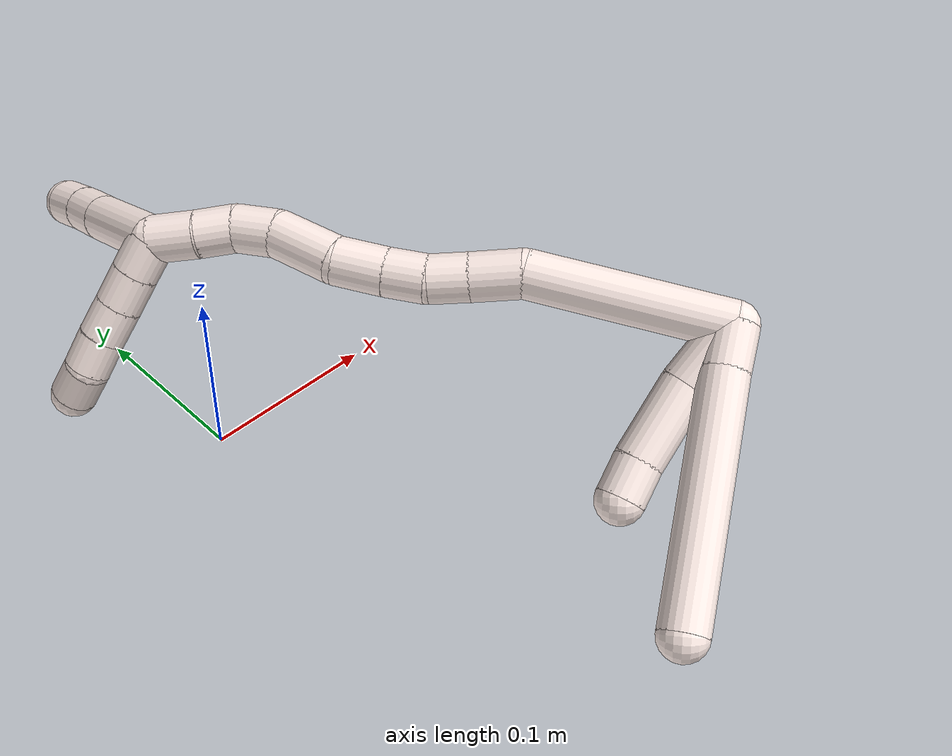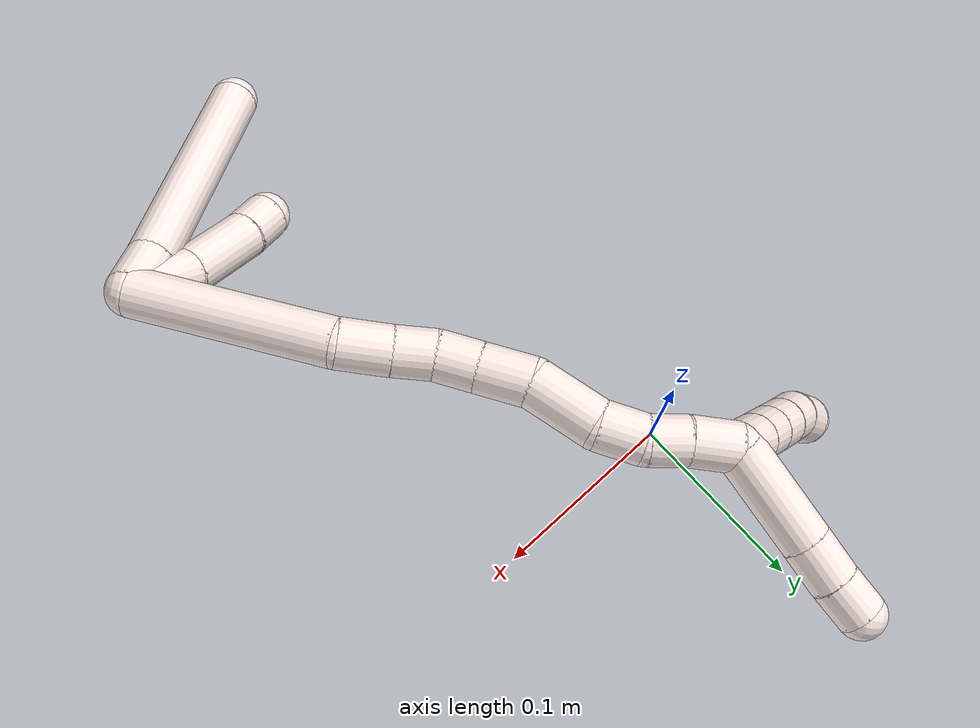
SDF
<sdf version="1.7">
 <world name="default">
  <model name="11">
   <static>0</static>
   <link name="11">
    <collision name="collision-cylinder-e_1_2_8">
     <pose>-0.010551 -0.005505 -0.001604 1.85427 -1.073 -1.34048</pose>
     <geometry><cylinder><radius>0.0125</radius><length>0.024018</length></cylinder></geometry>
     <surface>
      <friction><ode><mu>1.16</mu><mu2>1.16</mu2><slip1>0</slip1><slip2>0</slip2></ode></friction>
      <contact><ode><kp>1e+06</kp><kd>1</kd><max_vel>0</max_vel><min_depth>0.001</min_depth></ode></contact>
     </surface>
    </collision>
    <visual name="visual-cylinder-e_1_2_8">
     <pose>-0.010551 -0.005505 -0.001604 1.85427 -1.073 -1.34048</pose>
     <geometry><cylinder><radius>0.0125</radius><length>0.024018</length></cylinder></geometry>
     <material><ambient>1 0.933333 0.909804 1</ambient></material>
    </visual>
    <collision name="collision-cylinder-e_2_8_6">
     <pose>-0.077647 -0.038182 -0.008902 1.77738 -1.1144 -1.30879</pose>
     <geometry><cylinder><radius>0.0125</radius><length>0.125982</length></cylinder></geometry>
     <surface>
      <friction><ode><mu>1.16</mu><mu2>1.16</mu2><slip1>0</slip1><slip2>0</slip2></ode></friction>
      <contact><ode><kp>1e+06</kp><kd>1</kd><max_vel>0</max_vel><min_depth>0.001</min_depth></ode></contact>
     </surface>
    </collision>
    <visual name="visual-cylinder-e_2_8_6">
     <pose>-0.077647 -0.038182 -0.008902 1.77738 -1.1144 -1.30879</pose>
     <geometry><cylinder><radius>0.0125</radius><length>0.125982</length></cylinder></geometry>
     <material><ambient>1 0.933333 0.909804 1</ambient></material>
    </visual>
    <collision name="collision-cylinder-e_1_2_9">
     <pose>-0.010922 -0.010213 -0.010539 2.37192 -0.639784 -1.37111</pose>
     <geometry><cylinder><radius>0.0125</radius><length>0.036587</length></cylinder></geometry>
     <surface>
      <friction><ode><mu>1.16</mu><mu2>1.16</mu2><slip1>0</slip1><slip2>0</slip2></ode></friction>
      <contact><ode><kp>1e+06</kp><kd>1</kd><max_vel>0</max_vel><min_depth>0.001</min_depth></ode></contact>
     </surface>
    </collision>
    <visual name="visual-cylinder-e_1_2_9">
     <pose>-0.010922 -0.010213 -0.010539 2.37192 -0.639784 -1.37111</pose>
     <geometry><cylinder><radius>0.0125</radius><length>0.036587</length></cylinder></geometry>
     <material><ambient>1 0.933333 0.909804 1</ambient></material>
    </visual>
    <collision name="collision-cylinder-e_2_9_10">
     <pose>-0.037934 -0.030968 -0.0309 2.32081 -0.840475 -1.59746</pose>
     <geometry><cylinder><radius>0.0125</radius><length>0.043198</length></cylinder></geometry>
     <surface>
      <friction><ode><mu>1.16</mu><mu2>1.16</mu2><slip1>0</slip1><slip2>0</slip2></ode></friction>
      <contact><ode><kp>1e+06</kp><kd>1</kd><max_vel>0</max_vel><min_depth>0.001</min_depth></ode></contact>
     </surface>
    </collision>
    <visual name="visual-cylinder-e_2_9_10">
     <pose>-0.037934 -0.030968 -0.0309 2.32081 -0.840475 -1.59746</pose>
     <geometry><cylinder><radius>0.0125</radius><length>0.043198</length></cylinder></geometry>
     <material><ambient>1 0.933333 0.909804 1</ambient></material>
    </visual>
    <collision name="collision-cylinder-e_3_10_5">
     <pose>-0.06204 -0.046488 -0.044346 2.20021 -0.915773 -1.53882</pose>
     <geometry><cylinder><radius>0.0125</radius><length>0.020214</length></cylinder></geometry>
     <surface>
      <friction><ode><mu>1.16</mu><mu2>1.16</mu2><slip1>0</slip1><slip2>0</slip2></ode></friction>
      <contact><ode><kp>1e+06</kp><kd>1</kd><max_vel>0</max_vel><min_depth>0.001</min_depth></ode></contact>
     </surface>
    </collision>
    <visual name="visual-cylinder-e_3_10_5">
     <pose>-0.06204 -0.046488 -0.044346 2.20021 -0.915773 -1.53882</pose>
     <geometry><cylinder><radius>0.0125</radius><length>0.020214</length></cylinder></geometry>
     <material><ambient>1 0.933333 0.909804 1</ambient></material>
    </visual>
    <collision name="collision-cylinder-e_1_2_11">
     <pose>0.003505 0.01057 -0.050049 -2.93346 0.068421 -0.633292</pose>
     <geometry><cylinder><radius>0.0125</radius><length>0.102546</length></cylinder></geometry>
     <surface>
      <friction><ode><mu>1.16</mu><mu2>1.16</mu2><slip1>0</slip1><slip2>0</slip2></ode></friction>
      <contact><ode><kp>1e+06</kp><kd>1</kd><max_vel>0</max_vel><min_depth>0.001</min_depth></ode></contact>
     </surface>
    </collision>
    <visual name="visual-cylinder-e_1_2_11">
     <pose>0.003505 0.01057 -0.050049 -2.93346 0.068421 -0.633292</pose>
     <geometry><cylinder><radius>0.0125</radius><length>0.102546</length></cylinder></geometry>
     <material><ambient>1 0.933333 0.909804 1</ambient></material>
    </visual>
    <collision name="collision-cylinder-e_2_11_12">
     <pose>0.005574 0.02056 -0.113199 3.0973 -0.109112 -2.37094</pose>
     <geometry><cylinder><radius>0.0125</radius><length>0.026383</length></cylinder></geometry>
     <surface>
      <friction><ode><mu>1.16</mu><mu2>1.16</mu2><slip1>0</slip1><slip2>0</slip2></ode></friction>
      <contact><ode><kp>1e+06</kp><kd>1</kd><max_vel>0</max_vel><min_depth>0.001</min_depth></ode></contact>
     </surface>
    </collision>
    <visual name="visual-cylinder-e_2_11_12">
     <pose>0.005574 0.02056 -0.113199 3.0973 -0.109112 -2.37094</pose>
     <geometry><cylinder><radius>0.0125</radius><length>0.026383</length></cylinder></geometry>
     <material><ambient>1 0.933333 0.909804 1</ambient></material>
    </visual>
    <collision name="collision-cylinder-e_3_12_13">
     <pose>0.00266 0.020029 -0.136526 -3.13675 -0.143524 3.07419</pose>
     <geometry><cylinder><radius>0.0125</radius><length>0.020668</length></cylinder></geometry>
     <surface>
      <friction><ode><mu>1.16</mu><mu2>1.16</mu2><slip1>0</slip1><slip2>0</slip2></ode></friction>
      <contact><ode><kp>1e+06</kp><kd>1</kd><max_vel>0</max_vel><min_depth>0.001</min_depth></ode></contact>
     </surface>
    </collision>
    <visual name="visual-cylinder-e_3_12_13">
     <pose>0.00266 0.020029 -0.136526 -3.13675 -0.143524 3.07419</pose>
     <geometry><cylinder><radius>0.0125</radius><length>0.020668</length></cylinder></geometry>
     <material><ambient>1 0.933333 0.909804 1</ambient></material>
    </visual>
    <collision name="collision-cylinder-e_4_13_14">
     <pose>0.002001 0.021142 -0.15718 -3.0399 0.077998 -1.30821</pose>
     <geometry><cylinder><radius>0.0125</radius><length>0.021024</length></cylinder></geometry>
     <surface>
      <friction><ode><mu>1.16</mu><mu2>1.16</mu2><slip1>0</slip1><slip2>0</slip2></ode></friction>
      <contact><ode><kp>1e+06</kp><kd>1</kd><max_vel>0</max_vel><min_depth>0.001</min_depth></ode></contact>
     </surface>
    </collision>
    <visual name="visual-cylinder-e_4_13_14">
     <pose>0.002001 0.021142 -0.15718 -3.0399 0.077998 -1.30821</pose>
     <geometry><cylinder><radius>0.0125</radius><length>0.021024</length></cylinder></geometry>
     <material><ambient>1 0.933333 0.909804 1</ambient></material>
    </visual>
    <collision name="collision-cylinder-e_5_14_15">
     <pose>0.00399 0.024321 -0.180492 -2.97892 0.089395 -1.00367</pose>
     <geometry><cylinder><radius>0.0125</radius><length>0.026224</length></cylinder></geometry>
     <surface>
      <friction><ode><mu>1.16</mu><mu2>1.16</mu2><slip1>0</slip1><slip2>0</slip2></ode></friction>
      <contact><ode><kp>1e+06</kp><kd>1</kd><max_vel>0</max_vel><min_depth>0.001</min_depth></ode></contact>
     </surface>
    </collision>
    <visual name="visual-cylinder-e_5_14_15">
     <pose>0.00399 0.024321 -0.180492 -2.97892 0.089395 -1.00367</pose>
     <geometry><cylinder><radius>0.0125</radius><length>0.026224</length></cylinder></geometry>
     <material><ambient>1 0.933333 0.909804 1</ambient></material>
    </visual>
    <collision name="collision-cylinder-e_6_15_16">
     <pose>0.011964 0.028691 -0.209633 -3.00373 0.393027 -2.47395</pose>
     <geometry><cylinder><radius>0.0125</radius><length>0.035528</length></cylinder></geometry>
     <surface>
      <friction><ode><mu>1.16</mu><mu2>1.16</mu2><slip1>0</slip1><slip2>0</slip2></ode></friction>
      <contact><ode><kp>1e+06</kp><kd>1</kd><max_vel>0</max_vel><min_depth>0.001</min_depth></ode></contact>
     </surface>
    </collision>
    <visual name="visual-cylinder-e_6_15_16">
     <pose>0.011964 0.028691 -0.209633 -3.00373 0.393027 -2.47395</pose>
     <geometry><cylinder><radius>0.0125</radius><length>0.035528</length></cylinder></geometry>
     <material><ambient>1 0.933333 0.909804 1</ambient></material>
    </visual>
    <collision name="collision-cylinder-e_7_16_17">
     <pose>0.019846 0.031394 -0.237192 -3.10203 0.095014 -2.353</pose>
     <geometry><cylinder><radius>0.0125</radius><length>0.02273</length></cylinder></geometry>
     <surface>
      <friction><ode><mu>1.16</mu><mu2>1.16</mu2><slip1>0</slip1><slip2>0</slip2></ode></friction>
      <contact><ode><kp>1e+06</kp><kd>1</kd><max_vel>0</max_vel><min_depth>0.001</min_depth></ode></contact>
     </surface>
    </collision>
    <visual name="visual-cylinder-e_7_16_17">
     <pose>0.019846 0.031394 -0.237192 -3.10203 0.095014 -2.353</pose>
     <geometry><cylinder><radius>0.0125</radius><length>0.02273</length></cylinder></geometry>
     <material><ambient>1 0.933333 0.909804 1</ambient></material>
    </visual>
    <collision name="collision-cylinder-e_8_17_18">
     <pose>0.018626 0.031326 -0.258289 3.08899 -0.230219 -2.69411</pose>
     <geometry><cylinder><radius>0.0125</radius><length>0.020144</length></cylinder></geometry>
     <surface>
      <friction><ode><mu>1.16</mu><mu2>1.16</mu2><slip1>0</slip1><slip2>0</slip2></ode></friction>
      <contact><ode><kp>1e+06</kp><kd>1</kd><max_vel>0</max_vel><min_depth>0.001</min_depth></ode></contact>
     </surface>
    </collision>
    <visual name="visual-cylinder-e_8_17_18">
     <pose>0.018626 0.031326 -0.258289 3.08899 -0.230219 -2.69411</pose>
     <geometry><cylinder><radius>0.0125</radius><length>0.020144</length></cylinder></geometry>
     <material><ambient>1 0.933333 0.909804 1</ambient></material>
    </visual>
    <collision name="collision-cylinder-e_9_18_1">
     <pose>0.014852 0.029799 -0.280329 3.05925 -0.119487 -1.93538</pose>
     <geometry><cylinder><radius>0.0125</radius><length>0.024754</length></cylinder></geometry>
     <surface>
      <friction><ode><mu>1.16</mu><mu2>1.16</mu2><slip1>0</slip1><slip2>0</slip2></ode></friction>
      <contact><ode><kp>1e+06</kp><kd>1</kd><max_vel>0</max_vel><min_depth>0.001</min_depth></ode></contact>
     </surface>
    </collision>
    <visual name="visual-cylinder-e_9_18_1">
     <pose>0.014852 0.029799 -0.280329 3.05925 -0.119487 -1.93538</pose>
     <geometry><cylinder><radius>0.0125</radius><length>0.024754</length></cylinder></geometry>
     <material><ambient>1 0.933333 0.909804 1</ambient></material>
    </visual>
    <collision name="collision-cylinder-e_1_1_19">
     <pose>0.029678 0.021728 -0.313637 2.81811 0.633104 2.21732</pose>
     <geometry><cylinder><radius>0.0125</radius><length>0.055104</length></cylinder></geometry>
     <surface>
      <friction><ode><mu>1.16</mu><mu2>1.16</mu2><slip1>0</slip1><slip2>0</slip2></ode></friction>
      <contact><ode><kp>1e+06</kp><kd>1</kd><max_vel>0</max_vel><min_depth>0.001</min_depth></ode></contact>
     </surface>
    </collision>
    <visual name="visual-cylinder-e_1_1_19">
     <pose>0.029678 0.021728 -0.313637 2.81811 0.633104 2.21732</pose>
     <geometry><cylinder><radius>0.0125</radius><length>0.055104</length></cylinder></geometry>
     <material><ambient>1 0.933333 0.909804 1</ambient></material>
    </visual>
    <collision name="collision-cylinder-e_2_19_20">
     <pose>0.053138 0.01182 -0.3437 2.83531 0.64871 2.28087</pose>
     <geometry><cylinder><radius>0.0125</radius><length>0.0237</length></cylinder></geometry>
     <surface>
      <friction><ode><mu>1.16</mu><mu2>1.16</mu2><slip1>0</slip1><slip2>0</slip2></ode></friction>
      <contact><ode><kp>1e+06</kp><kd>1</kd><max_vel>0</max_vel><min_depth>0.001</min_depth></ode></contact>
     </surface>
    </collision>
    <visual name="visual-cylinder-e_2_19_20">
     <pose>0.053138 0.01182 -0.3437 2.83531 0.64871 2.28087</pose>
     <geometry><cylinder><radius>0.0125</radius><length>0.0237</length></cylinder></geometry>
     <material><ambient>1 0.933333 0.909804 1</ambient></material>
    </visual>
    <collision name="collision-cylinder-e_3_20_4">
     <pose>0.066181 0.006485 -0.36116 2.85547 0.588604 2.25431</pose>
     <geometry><cylinder><radius>0.0125</radius><length>0.021196</length></cylinder></geometry>
     <surface>
      <friction><ode><mu>1.16</mu><mu2>1.16</mu2><slip1>0</slip1><slip2>0</slip2></ode></friction>
      <contact><ode><kp>1e+06</kp><kd>1</kd><max_vel>0</max_vel><min_depth>0.001</min_depth></ode></contact>
     </surface>
    </collision>
    <visual name="visual-cylinder-e_3_20_4">
     <pose>0.066181 0.006485 -0.36116 2.85547 0.588604 2.25431</pose>
     <geometry><cylinder><radius>0.0125</radius><length>0.021196</length></cylinder></geometry>
     <material><ambient>1 0.933333 0.909804 1</ambient></material>
    </visual>
    <collision name="collision-cylinder-e_1_1_21">
     <pose>0.008607 0.021591 -0.297621 2.18209 -0.497164 -0.907779</pose>
     <geometry><cylinder><radius>0.0125</radius><length>0.02</length></cylinder></geometry>
     <surface>
      <friction><ode><mu>1.16</mu><mu2>1.16</mu2><slip1>0</slip1><slip2>0</slip2></ode></friction>
      <contact><ode><kp>1e+06</kp><kd>1</kd><max_vel>0</max_vel><min_depth>0.001</min_depth></ode></contact>
     </surface>
    </collision>
    <visual name="visual-cylinder-e_1_1_21">
     <pose>0.008607 0.021591 -0.297621 2.18209 -0.497164 -0.907779</pose>
     <geometry><cylinder><radius>0.0125</radius><length>0.02</length></cylinder></geometry>
     <material><ambient>1 0.933333 0.909804 1</ambient></material>
    </visual>
    <collision name="collision-cylinder-e_2_21_22">
     <pose>-0.000916 0.007116 -0.307609 2.16756 -0.495454 -0.891145</pose>
     <geometry><cylinder><radius>0.0125</radius><length>0.02</length></cylinder></geometry>
     <surface>
      <friction><ode><mu>1.16</mu><mu2>1.16</mu2><slip1>0</slip1><slip2>0</slip2></ode></friction>
      <contact><ode><kp>1e+06</kp><kd>1</kd><max_vel>0</max_vel><min_depth>0.001</min_depth></ode></contact>
     </surface>
    </collision>
    <visual name="visual-cylinder-e_2_21_22">
     <pose>-0.000916 0.007116 -0.307609 2.16756 -0.495454 -0.891145</pose>
     <geometry><cylinder><radius>0.0125</radius><length>0.02</length></cylinder></geometry>
     <material><ambient>1 0.933333 0.909804 1</ambient></material>
    </visual>
    <collision name="collision-cylinder-e_3_22_23">
     <pose>-0.01048 -0.007355 -0.317564 2.17915 -0.501706 -0.912438</pose>
     <geometry><cylinder><radius>0.0125</radius><length>0.02</length></cylinder></geometry>
     <surface>
      <friction><ode><mu>1.16</mu><mu2>1.16</mu2><slip1>0</slip1><slip2>0</slip2></ode></friction>
      <contact><ode><kp>1e+06</kp><kd>1</kd><max_vel>0</max_vel><min_depth>0.001</min_depth></ode></contact>
     </surface>
    </collision>
    <visual name="visual-cylinder-e_3_22_23">
     <pose>-0.01048 -0.007355 -0.317564 2.17915 -0.501706 -0.912438</pose>
     <geometry><cylinder><radius>0.0125</radius><length>0.02</length></cylinder></geometry>
     <material><ambient>1 0.933333 0.909804 1</ambient></material>
    </visual>
    <collision name="collision-cylinder-e_4_23_24">
     <pose>-0.020021 -0.022002 -0.327274 2.13344 -0.492916 -0.85578</pose>
     <geometry><cylinder><radius>0.0125</radius><length>0.02</length></cylinder></geometry>
     <surface>
      <friction><ode><mu>1.16</mu><mu2>1.16</mu2><slip1>0</slip1><slip2>0</slip2></ode></friction>
      <contact><ode><kp>1e+06</kp><kd>1</kd><max_vel>0</max_vel><min_depth>0.001</min_depth></ode></contact>
     </surface>
    </collision>
    <visual name="visual-cylinder-e_4_23_24">
     <pose>-0.020021 -0.022002 -0.327274 2.13344 -0.492916 -0.85578</pose>
     <geometry><cylinder><radius>0.0125</radius><length>0.02</length></cylinder></geometry>
     <material><ambient>1 0.933333 0.909804 1</ambient></material>
    </visual>
    <collision name="collision-cylinder-e_5_24_3">
     <pose>-0.026841 -0.037548 -0.337461 2.16659 -0.210365 -0.393106</pose>
     <geometry><cylinder><radius>0.0125</radius><length>0.02</length></cylinder></geometry>
     <surface>
      <friction><ode><mu>1.16</mu><mu2>1.16</mu2><slip1>0</slip1><slip2>0</slip2></ode></friction>
      <contact><ode><kp>1e+06</kp><kd>1</kd><max_vel>0</max_vel><min_depth>0.001</min_depth></ode></contact>
     </surface>
    </collision>
    <visual name="visual-cylinder-e_5_24_3">
     <pose>-0.026841 -0.037548 -0.337461 2.16659 -0.210365 -0.393106</pose>
     <geometry><cylinder><radius>0.0125</radius><length>0.02</length></cylinder></geometry>
     <material><ambient>1 0.933333 0.909804 1</ambient></material>
    </visual>
    <collision name="collision-sphere-3">
     <pose>-0.028929 -0.045642 -0.342949 0 -0 0</pose>
     <geometry><sphere><radius>0.0125</radius></sphere></geometry>
     <surface>
      <friction><ode><mu>1.16</mu><mu2>1.16</mu2><slip1>0</slip1><slip2>0</slip2></ode></friction>
      <contact><ode><kp>1e+06</kp><kd>1</kd><max_vel>0</max_vel><min_depth>0.001</min_depth></ode></contact>
     </surface>
    </collision>
    <visual name="visual-sphere-3">
     <pose>-0.028929 -0.045642 -0.342949 0 -0 0</pose>
     <geometry><sphere><radius>0.0125</radius></sphere></geometry>
     <material><ambient>1 0.933333 0.909804 1</ambient></material>
    </visual>
    <collision name="collision-sphere-24">
     <pose>-0.024753 -0.029453 -0.331973 0 -0 0</pose>
     <geometry><sphere><radius>0.0125</radius></sphere></geometry>
     <surface>
      <friction><ode><mu>1.16</mu><mu2>1.16</mu2><slip1>0</slip1><slip2>0</slip2></ode></friction>
      <contact><ode><kp>1e+06</kp><kd>1</kd><max_vel>0</max_vel><min_depth>0.001</min_depth></ode></contact>
     </surface>
    </collision>
    <visual name="visual-sphere-24">
     <pose>-0.024753 -0.029453 -0.331973 0 -0 0</pose>
     <geometry><sphere><radius>0.0125</radius></sphere></geometry>
     <material><ambient>1 0.933333 0.909804 1</ambient></material>
    </visual>
    <collision name="collision-sphere-23">
     <pose>-0.015289 -0.01455 -0.322575 0 -0 0</pose>
     <geometry><sphere><radius>0.0125</radius></sphere></geometry>
     <surface>
      <friction><ode><mu>1.16</mu><mu2>1.16</mu2><slip1>0</slip1><slip2>0</slip2></ode></friction>
      <contact><ode><kp>1e+06</kp><kd>1</kd><max_vel>0</max_vel><min_depth>0.001</min_depth></ode></contact>
     </surface>
    </collision>
    <visual name="visual-sphere-23">
     <pose>-0.015289 -0.01455 -0.322575 0 -0 0</pose>
     <geometry><sphere><radius>0.0125</radius></sphere></geometry>
     <material><ambient>1 0.933333 0.909804 1</ambient></material>
    </visual>
    <collision name="collision-sphere-22">
     <pose>-0.005671 -0.000161 -0.312553 0 -0 0</pose>
     <geometry><sphere><radius>0.0125</radius></sphere></geometry>
     <surface>
      <friction><ode><mu>1.16</mu><mu2>1.16</mu2><slip1>0</slip1><slip2>0</slip2></ode></friction>
      <contact><ode><kp>1e+06</kp><kd>1</kd><max_vel>0</max_vel><min_depth>0.001</min_depth></ode></contact>
     </surface>
    </collision>
    <visual name="visual-sphere-22">
     <pose>-0.005671 -0.000161 -0.312553 0 -0 0</pose>
     <geometry><sphere><radius>0.0125</radius></sphere></geometry>
     <material><ambient>1 0.933333 0.909804 1</ambient></material>
    </visual>
    <collision name="collision-sphere-21">
     <pose>0.003838 0.014393 -0.302665 0 -0 0</pose>
     <geometry><sphere><radius>0.0125</radius></sphere></geometry>
     <surface>
      <friction><ode><mu>1.16</mu><mu2>1.16</mu2><slip1>0</slip1><slip2>0</slip2></ode></friction>
      <contact><ode><kp>1e+06</kp><kd>1</kd><max_vel>0</max_vel><min_depth>0.001</min_depth></ode></contact>
     </surface>
    </collision>
    <visual name="visual-sphere-21">
     <pose>0.003838 0.014393 -0.302665 0 -0 0</pose>
     <geometry><sphere><radius>0.0125</radius></sphere></geometry>
     <material><ambient>1 0.933333 0.909804 1</ambient></material>
    </visual>
    <collision name="collision-sphere-4">
     <pose>0.072065 0.003998 -0.369616 0 -0 0</pose>
     <geometry><sphere><radius>0.0125</radius></sphere></geometry>
     <surface>
      <friction><ode><mu>1.16</mu><mu2>1.16</mu2><slip1>0</slip1><slip2>0</slip2></ode></friction>
      <contact><ode><kp>1e+06</kp><kd>1</kd><max_vel>0</max_vel><min_depth>0.001</min_depth></ode></contact>
     </surface>
    </collision>
    <visual name="visual-sphere-4">
     <pose>0.072065 0.003998 -0.369616 0 -0 0</pose>
     <geometry><sphere><radius>0.0125</radius></sphere></geometry>
     <material><ambient>1 0.933333 0.909804 1</ambient></material>
    </visual>
    <collision name="collision-sphere-20">
     <pose>0.060297 0.008973 -0.352703 0 -0 0</pose>
     <geometry><sphere><radius>0.0125</radius></sphere></geometry>
     <surface>
      <friction><ode><mu>1.16</mu><mu2>1.16</mu2><slip1>0</slip1><slip2>0</slip2></ode></friction>
      <contact><ode><kp>1e+06</kp><kd>1</kd><max_vel>0</max_vel><min_depth>0.001</min_depth></ode></contact>
     </surface>
    </collision>
    <visual name="visual-sphere-20">
     <pose>0.060297 0.008973 -0.352703 0 -0 0</pose>
     <geometry><sphere><radius>0.0125</radius></sphere></geometry>
     <material><ambient>1 0.933333 0.909804 1</ambient></material>
    </visual>
    <collision name="collision-sphere-5">
     <pose>-0.070055 -0.051465 -0.047971 0 -0 0</pose>
     <geometry><sphere><radius>0.0125</radius></sphere></geometry>
     <surface>
      <friction><ode><mu>1.16</mu><mu2>1.16</mu2><slip1>0</slip1><slip2>0</slip2></ode></friction>
      <contact><ode><kp>1e+06</kp><kd>1</kd><max_vel>0</max_vel><min_depth>0.001</min_depth></ode></contact>
     </surface>
    </collision>
    <visual name="visual-sphere-5">
     <pose>-0.070055 -0.051465 -0.047971 0 -0 0</pose>
     <geometry><sphere><radius>0.0125</radius></sphere></geometry>
     <material><ambient>1 0.933333 0.909804 1</ambient></material>
    </visual>
    <collision name="collision-sphere-10">
     <pose>-0.054024 -0.041511 -0.040722 0 -0 0</pose>
     <geometry><sphere><radius>0.0125</radius></sphere></geometry>
     <surface>
      <friction><ode><mu>1.16</mu><mu2>1.16</mu2><slip1>0</slip1><slip2>0</slip2></ode></friction>
      <contact><ode><kp>1e+06</kp><kd>1</kd><max_vel>0</max_vel><min_depth>0.001</min_depth></ode></contact>
     </surface>
    </collision>
    <visual name="visual-sphere-10">
     <pose>-0.054024 -0.041511 -0.040722 0 -0 0</pose>
     <geometry><sphere><radius>0.0125</radius></sphere></geometry>
     <material><ambient>1 0.933333 0.909804 1</ambient></material>
    </visual>
    <collision name="collision-sphere-6">
     <pose>-0.13419 -0.065353 -0.014596 0 -0 0</pose>
     <geometry><sphere><radius>0.0125</radius></sphere></geometry>
     <surface>
      <friction><ode><mu>1.16</mu><mu2>1.16</mu2><slip1>0</slip1><slip2>0</slip2></ode></friction>
      <contact><ode><kp>1e+06</kp><kd>1</kd><max_vel>0</max_vel><min_depth>0.001</min_depth></ode></contact>
     </surface>
    </collision>
    <visual name="visual-sphere-6">
     <pose>-0.13419 -0.065353 -0.014596 0 -0 0</pose>
     <geometry><sphere><radius>0.0125</radius></sphere></geometry>
     <material><ambient>1 0.933333 0.909804 1</ambient></material>
    </visual>
    <collision name="collision-sphere-9">
     <pose>-0.021844 -0.020426 -0.021078 0 -0 0</pose>
     <geometry><sphere><radius>0.0125</radius></sphere></geometry>
     <surface>
      <friction><ode><mu>1.16</mu><mu2>1.16</mu2><slip1>0</slip1><slip2>0</slip2></ode></friction>
      <contact><ode><kp>1e+06</kp><kd>1</kd><max_vel>0</max_vel><min_depth>0.001</min_depth></ode></contact>
     </surface>
    </collision>
    <visual name="visual-sphere-9">
     <pose>-0.021844 -0.020426 -0.021078 0 -0 0</pose>
     <geometry><sphere><radius>0.0125</radius></sphere></geometry>
     <material><ambient>1 0.933333 0.909804 1</ambient></material>
    </visual>
    <collision name="collision-sphere-2">
     <geometry><sphere><radius>0.0125</radius></sphere></geometry>
     <surface>
      <friction><ode><mu>1.16</mu><mu2>1.16</mu2><slip1>0</slip1><slip2>0</slip2></ode></friction>
      <contact><ode><kp>1e+06</kp><kd>1</kd><max_vel>0</max_vel><min_depth>0.001</min_depth></ode></contact>
     </surface>
    </collision>
    <visual name="visual-sphere-2">
     <geometry><sphere><radius>0.0125</radius></sphere></geometry>
     <material><ambient>1 0.933333 0.909804 1</ambient></material>
    </visual>
    <collision name="collision-sphere-19">
     <pose>0.045979 0.014667 -0.334697 0 -0 0</pose>
     <geometry><sphere><radius>0.0125</radius></sphere></geometry>
     <surface>
      <friction><ode><mu>1.16</mu><mu2>1.16</mu2><slip1>0</slip1><slip2>0</slip2></ode></friction>
      <contact><ode><kp>1e+06</kp><kd>1</kd><max_vel>0</max_vel><min_depth>0.001</min_depth></ode></contact>
     </surface>
    </collision>
    <visual name="visual-sphere-19">
     <pose>0.045979 0.014667 -0.334697 0 -0 0</pose>
     <geometry><sphere><radius>0.0125</radius></sphere></geometry>
     <material><ambient>1 0.933333 0.909804 1</ambient></material>
    </visual>
    <collision name="collision-sphere-8">
     <pose>-0.021103 -0.01101 -0.003208 0 -0 0</pose>
     <geometry><sphere><radius>0.0125</radius></sphere></geometry>
     <surface>
      <friction><ode><mu>1.16</mu><mu2>1.16</mu2><slip1>0</slip1><slip2>0</slip2></ode></friction>
      <contact><ode><kp>1e+06</kp><kd>1</kd><max_vel>0</max_vel><min_depth>0.001</min_depth></ode></contact>
     </surface>
    </collision>
    <visual name="visual-sphere-8">
     <pose>-0.021103 -0.01101 -0.003208 0 -0 0</pose>
     <geometry><sphere><radius>0.0125</radius></sphere></geometry>
     <material><ambient>1 0.933333 0.909804 1</ambient></material>
    </visual>
    <collision name="collision-sphere-11">
     <pose>0.007011 0.02114 -0.100098 0 -0 0</pose>
     <geometry><sphere><radius>0.0125</radius></sphere></geometry>
     <surface>
      <friction><ode><mu>1.16</mu><mu2>1.16</mu2><slip1>0</slip1><slip2>0</slip2></ode></friction>
      <contact><ode><kp>1e+06</kp><kd>1</kd><max_vel>0</max_vel><min_depth>0.001</min_depth></ode></contact>
     </surface>
    </collision>
    <visual name="visual-sphere-11">
     <pose>0.007011 0.02114 -0.100098 0 -0 0</pose>
     <geometry><sphere><radius>0.0125</radius></sphere></geometry>
     <material><ambient>1 0.933333 0.909804 1</ambient></material>
    </visual>
    <collision name="collision-sphere-12">
     <pose>0.004138 0.019979 -0.126299 0 -0 0</pose>
     <geometry><sphere><radius>0.0125</radius></sphere></geometry>
     <surface>
      <friction><ode><mu>1.16</mu><mu2>1.16</mu2><slip1>0</slip1><slip2>0</slip2></ode></friction>
      <contact><ode><kp>1e+06</kp><kd>1</kd><max_vel>0</max_vel><min_depth>0.001</min_depth></ode></contact>
     </surface>
    </collision>
    <visual name="visual-sphere-12">
     <pose>0.004138 0.019979 -0.126299 0 -0 0</pose>
     <geometry><sphere><radius>0.0125</radius></sphere></geometry>
     <material><ambient>1 0.933333 0.909804 1</ambient></material>
    </visual>
    <collision name="collision-sphere-13">
     <pose>0.001182 0.020078 -0.146754 0 -0 0</pose>
     <geometry><sphere><radius>0.0125</radius></sphere></geometry>
     <surface>
      <friction><ode><mu>1.16</mu><mu2>1.16</mu2><slip1>0</slip1><slip2>0</slip2></ode></friction>
      <contact><ode><kp>1e+06</kp><kd>1</kd><max_vel>0</max_vel><min_depth>0.001</min_depth></ode></contact>
     </surface>
    </collision>
    <visual name="visual-sphere-13">
     <pose>0.001182 0.020078 -0.146754 0 -0 0</pose>
     <geometry><sphere><radius>0.0125</radius></sphere></geometry>
     <material><ambient>1 0.933333 0.909804 1</ambient></material>
    </visual>
    <collision name="collision-sphere-14">
     <pose>0.00282 0.022206 -0.167605 0 -0 0</pose>
     <geometry><sphere><radius>0.0125</radius></sphere></geometry>
     <surface>
      <friction><ode><mu>1.16</mu><mu2>1.16</mu2><slip1>0</slip1><slip2>0</slip2></ode></friction>
      <contact><ode><kp>1e+06</kp><kd>1</kd><max_vel>0</max_vel><min_depth>0.001</min_depth></ode></contact>
     </surface>
    </collision>
    <visual name="visual-sphere-14">
     <pose>0.00282 0.022206 -0.167605 0 -0 0</pose>
     <geometry><sphere><radius>0.0125</radius></sphere></geometry>
     <material><ambient>1 0.933333 0.909804 1</ambient></material>
    </visual>
    <collision name="collision-sphere-15">
     <pose>0.005161 0.026436 -0.19338 0 -0 0</pose>
     <geometry><sphere><radius>0.0125</radius></sphere></geometry>
     <surface>
      <friction><ode><mu>1.16</mu><mu2>1.16</mu2><slip1>0</slip1><slip2>0</slip2></ode></friction>
      <contact><ode><kp>1e+06</kp><kd>1</kd><max_vel>0</max_vel><min_depth>0.001</min_depth></ode></contact>
     </surface>
    </collision>
    <visual name="visual-sphere-15">
     <pose>0.005161 0.026436 -0.19338 0 -0 0</pose>
     <geometry><sphere><radius>0.0125</radius></sphere></geometry>
     <material><ambient>1 0.933333 0.909804 1</ambient></material>
    </visual>
    <collision name="collision-sphere-16">
     <pose>0.018768 0.030946 -0.225887 0 -0 0</pose>
     <geometry><sphere><radius>0.0125</radius></sphere></geometry>
     <surface>
      <friction><ode><mu>1.16</mu><mu2>1.16</mu2><slip1>0</slip1><slip2>0</slip2></ode></friction>
      <contact><ode><kp>1e+06</kp><kd>1</kd><max_vel>0</max_vel><min_depth>0.001</min_depth></ode></contact>
     </surface>
    </collision>
    <visual name="visual-sphere-16">
     <pose>0.018768 0.030946 -0.225887 0 -0 0</pose>
     <geometry><sphere><radius>0.0125</radius></sphere></geometry>
     <material><ambient>1 0.933333 0.909804 1</ambient></material>
    </visual>
    <collision name="collision-sphere-17">
     <pose>0.020924 0.031841 -0.248497 0 -0 0</pose>
     <geometry><sphere><radius>0.0125</radius></sphere></geometry>
     <surface>
      <friction><ode><mu>1.16</mu><mu2>1.16</mu2><slip1>0</slip1><slip2>0</slip2></ode></friction>
      <contact><ode><kp>1e+06</kp><kd>1</kd><max_vel>0</max_vel><min_depth>0.001</min_depth></ode></contact>
     </surface>
    </collision>
    <visual name="visual-sphere-17">
     <pose>0.020924 0.031841 -0.248497 0 -0 0</pose>
     <geometry><sphere><radius>0.0125</radius></sphere></geometry>
     <material><ambient>1 0.933333 0.909804 1</ambient></material>
    </visual>
    <collision name="collision-sphere-18">
     <pose>0.016327 0.03081 -0.268082 0 -0 0</pose>
     <geometry><sphere><radius>0.0125</radius></sphere></geometry>
     <surface>
      <friction><ode><mu>1.16</mu><mu2>1.16</mu2><slip1>0</slip1><slip2>0</slip2></ode></friction>
      <contact><ode><kp>1e+06</kp><kd>1</kd><max_vel>0</max_vel><min_depth>0.001</min_depth></ode></contact>
     </surface>
    </collision>
    <visual name="visual-sphere-18">
     <pose>0.016327 0.03081 -0.268082 0 -0 0</pose>
     <geometry><sphere><radius>0.0125</radius></sphere></geometry>
     <material><ambient>1 0.933333 0.909804 1</ambient></material>
    </visual>
    <collision name="collision-sphere-1">
     <pose>0.013377 0.028789 -0.292576 0 -0 0</pose>
     <geometry><sphere><radius>0.0125</radius></sphere></geometry>
     <surface>
      <friction><ode><mu>1.16</mu><mu2>1.16</mu2><slip1>0</slip1><slip2>0</slip2></ode></friction>
      <contact><ode><kp>1e+06</kp><kd>1</kd><max_vel>0</max_vel><min_depth>0.001</min_depth></ode></contact>
     </surface>
    </collision>
    <visual name="visual-sphere-1">
     <pose>0.013377 0.028789 -0.292576 0 -0 0</pose>
     <geometry><sphere><radius>0.0125</radius></sphere></geometry>
     <material><ambient>1 0.933333 0.909804 1</ambient></material>
    </visual>
    <inertial>
     <pose>-0.010262 -0.000691 -0.150094 0 -0 0</pose>
     <mass>0.75</mass>
     <inertia>
      <ixx>-7.6e-05</ixx>
      <ixy>0</ixy>
      <ixz>0</ixz>
      <iyy>-6.4e-05</iyy>
      <iyz>0</iyz>
      <izz>0.000185</izz>
     </inertia>
    </inertial>
   </link>
   <pose>0.163163 -0.204939 0.123551 1.45521 -0.016276 0.625655</pose>
  </model>
 </world>
</sdf>
